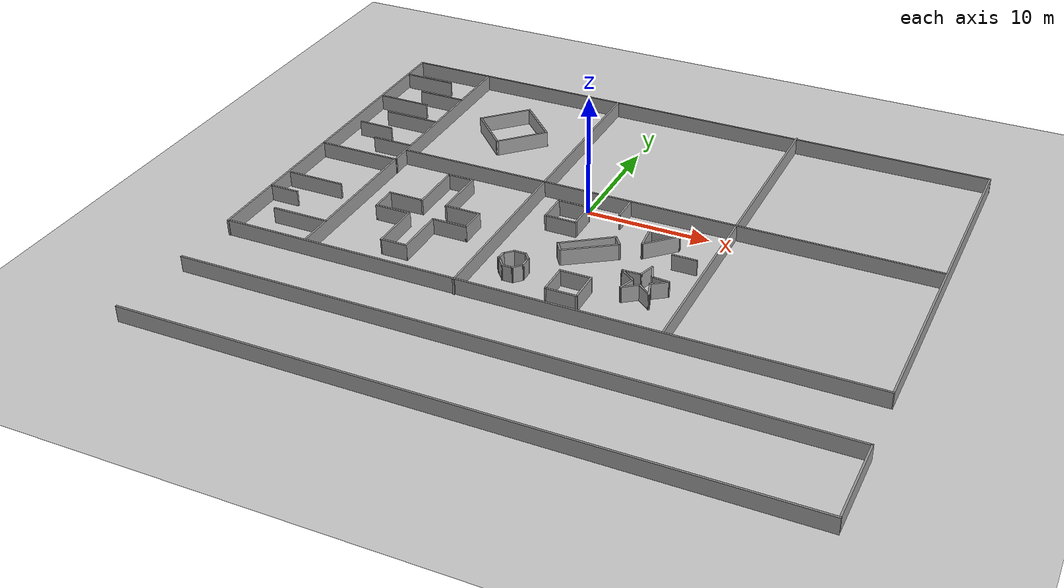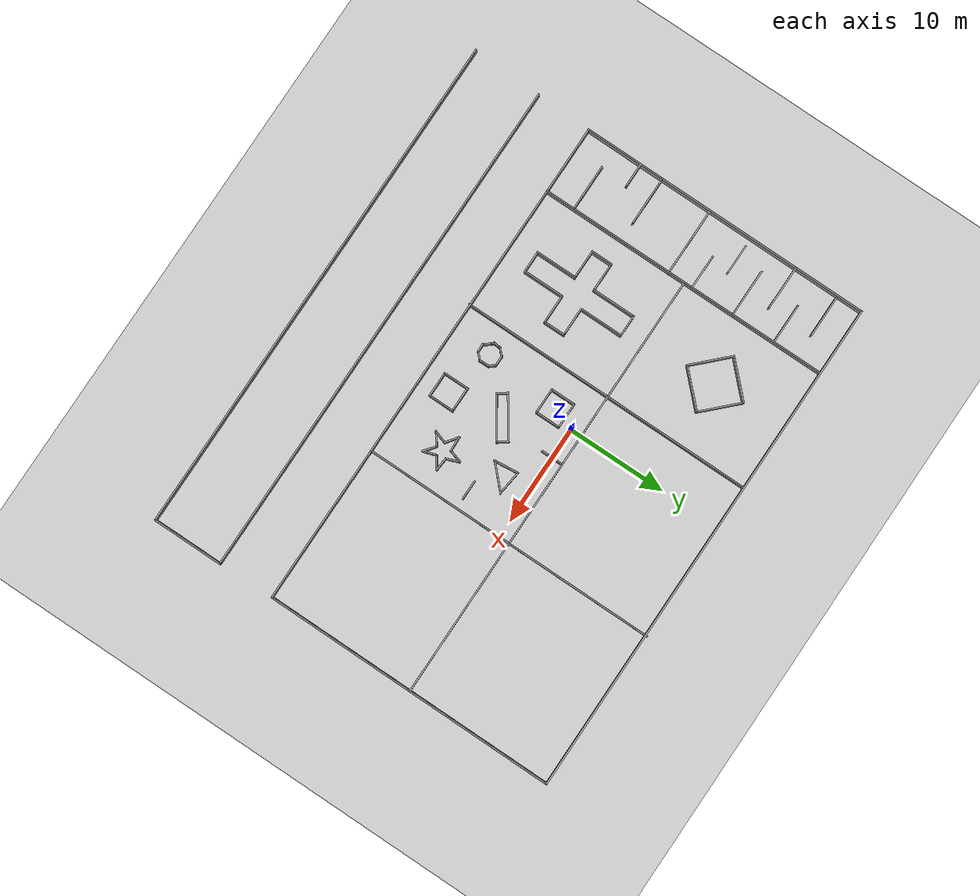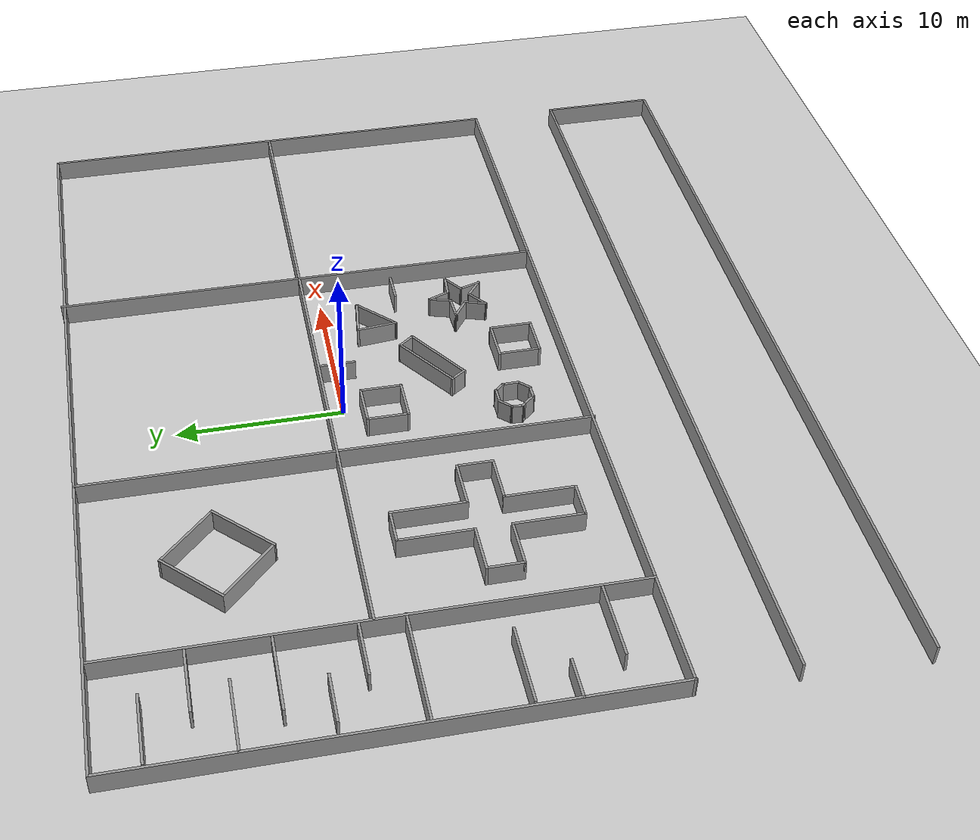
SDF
<sdf version="1.6">
 <world name="default">
  <include><uri>model://ground_plane</uri></include>
  <include><uri>model://sun</uri></include>
  <model name="total">
   <pose>1.86673 -5.34676 -1.25 0 -0 0</pose>
   <link name="Wall_100">
    <collision name="Wall_100_Collision">
     <geometry><box><size>52 0.15 2.5</size></box></geometry>
     <pose>0 0 1.25 0 -0 0</pose>
    </collision>
    <visual name="Wall_100_Visual">
     <pose>0 0 1.25 0 -0 0</pose>
     <geometry><box><size>52 0.15 2.5</size></box></geometry>
     <material>
      <script><uri>file://media/materials/scripts/gazebo.material</uri><name>Gazebo/Grey</name></script>
      <ambient>1 1 1 1</ambient>
     </material>
     <meta><layer>0</layer></meta>
    </visual>
    <pose>0.125 -14.3457 0 0 -0 0</pose>
   </link>
   <link name="Wall_101">
    <collision name="Wall_101_Collision">
     <geometry><box><size>7.25 0.15 2.5</size></box></geometry>
     <pose>0 0 1.25 0 -0 0</pose>
    </collision>
    <visual name="Wall_101_Visual">
     <pose>0 0 1.25 0 -0 0</pose>
     <geometry><box><size>7.25 0.15 2.5</size></box></geometry>
     <material>
      <script><uri>file://media/materials/scripts/gazebo.material</uri><name>Gazebo/Grey</name></script>
      <ambient>1 1 1 1</ambient>
     </material>
     <meta><layer>0</layer></meta>
    </visual>
    <pose>26.05 -17.8957 0 0 -0 -1.5708</pose>
   </link>
   <link name="Wall_102">
    <collision name="Wall_102_Collision">
     <geometry><box><size>52.25 0.15 2.5</size></box></geometry>
     <pose>0 0 1.25 0 -0 0</pose>
    </collision>
    <visual name="Wall_102_Visual">
     <pose>0 0 1.25 0 -0 0</pose>
     <geometry><box><size>52.25 0.15 2.5</size></box></geometry>
     <material>
      <script><uri>file://media/materials/scripts/gazebo.material</uri><name>Gazebo/Grey</name></script>
      <ambient>1 1 1 1</ambient>
     </material>
     <meta><layer>0</layer></meta>
    </visual>
    <pose>-0 -21.4457 0 0 -0 3.14159</pose>
   </link>
   <link name="Wall_104">
    <collision name="Wall_104_Collision">
     <geometry><box><size>30.2056 0.15 2.5</size></box></geometry>
     <pose>0 0 1.25 0 -0 0</pose>
    </collision>
    <visual name="Wall_104_Visual">
     <pose>0 0 1.25 0 -0 0</pose>
     <geometry><box><size>30.2056 0.15 2.5</size></box></geometry>
     <material>
      <script><uri>file://media/materials/scripts/gazebo.material</uri><name>Gazebo/Grey</name></script>
      <ambient>1 1 1 1</ambient>
     </material>
     <meta><layer>0</layer></meta>
    </visual>
    <pose>-25.6466 6.27018 0 0 -0 -1.57231</pose>
   </link>
   <link name="Wall_105">
    <collision name="Wall_105_Collision">
     <geometry><box><size>51.75 0.15 2.5</size></box></geometry>
     <pose>0 0 1.25 0 -0 0</pose>
    </collision>
    <visual name="Wall_105_Visual">
     <pose>0 0 1.25 0 -0 0</pose>
     <geometry><box><size>51.75 0.15 2.5</size></box></geometry>
     <material>
      <script><uri>file://media/materials/scripts/gazebo.material</uri><name>Gazebo/Grey</name></script>
      <ambient>1 1 1 1</ambient>
     </material>
     <meta><layer>0</layer></meta>
    </visual>
    <pose>0.130611 -8.71213 0 0 -0 0</pose>
   </link>
   <link name="Wall_106">
    <collision name="Wall_106_Collision">
     <geometry><box><size>30.1591 0.15 2.5</size></box></geometry>
     <pose>0 0 1.25 0 -0 0</pose>
    </collision>
    <visual name="Wall_106_Visual">
     <pose>0 0 1.25 0 -0 0</pose>
     <geometry><box><size>30.1591 0.15 2.5</size></box></geometry>
     <material>
      <script><uri>file://media/materials/scripts/gazebo.material</uri><name>Gazebo/Grey</name></script>
      <ambient>1 1 1 1</ambient>
     </material>
     <meta><layer>0</layer></meta>
    </visual>
    <pose>25.9566 6.29242 0 0 -0 1.56907</pose>
   </link>
   <link name="Wall_107">
    <collision name="Wall_107_Collision">
     <geometry><box><size>51.7506 0.15 2.5</size></box></geometry>
     <pose>0 0 1.25 0 -0 0</pose>
    </collision>
    <visual name="Wall_107_Visual">
     <pose>0 0 1.25 0 -0 0</pose>
     <geometry><box><size>51.7506 0.15 2.5</size></box></geometry>
     <material>
      <script><uri>file://media/materials/scripts/gazebo.material</uri><name>Gazebo/Grey</name></script>
      <ambient>1 1 1 1</ambient>
     </material>
     <meta><layer>0</layer></meta>
    </visual>
    <pose>0.182505 21.297 0 0 -0 3.14159</pose>
   </link>
   <link name="Wall_109">
    <collision name="Wall_109_Collision">
     <geometry><box><size>30 0.15 2.5</size></box></geometry>
     <pose>0 0 1.25 0 -0 0</pose>
    </collision>
    <visual name="Wall_109_Visual">
     <pose>0 0 1.25 0 -0 0</pose>
     <geometry><box><size>30 0.15 2.5</size></box></geometry>
     <material>
      <script><uri>file://media/materials/scripts/gazebo.material</uri><name>Gazebo/Grey</name></script>
      <ambient>1 1 1 1</ambient>
     </material>
     <meta><layer>0</layer></meta>
    </visual>
    <pose>-18.8276 6.23117 0 0 -0 -1.5708</pose>
   </link>
   <link name="Wall_111">
    <collision name="Wall_111_Collision">
     <geometry><box><size>4.25 0.15 2.5</size></box></geometry>
     <pose>0 0 1.25 0 -0 0</pose>
    </collision>
    <visual name="Wall_111_Visual">
     <pose>0 0 1.25 0 -0 0</pose>
     <geometry><box><size>4.25 0.15 2.5</size></box></geometry>
     <material>
      <script><uri>file://media/materials/scripts/gazebo.material</uri><name>Gazebo/Grey</name></script>
      <ambient>1 1 1 1</ambient>
     </material>
     <meta><layer>0</layer></meta>
    </visual>
    <pose>-23.3719 18.7001 0 0 -0 0</pose>
   </link>
   <link name="Wall_113">
    <collision name="Wall_113_Collision">
     <geometry><box><size>4 0.15 2.5</size></box></geometry>
     <pose>0 0 1.25 0 -0 0</pose>
    </collision>
    <visual name="Wall_113_Visual">
     <pose>0 0 1.25 0 -0 0</pose>
     <geometry><box><size>4 0.15 2.5</size></box></geometry>
     <material>
      <script><uri>file://media/materials/scripts/gazebo.material</uri><name>Gazebo/Grey</name></script>
      <ambient>1 1 1 1</ambient>
     </material>
     <meta><layer>0</layer></meta>
    </visual>
    <pose>-20.8595 16.1986 0 0 -0 0</pose>
   </link>
   <link name="Wall_115">
    <collision name="Wall_115_Collision">
     <geometry><box><size>4.5 0.15 2.5</size></box></geometry>
     <pose>0 0 1.25 0 -0 0</pose>
    </collision>
    <visual name="Wall_115_Visual">
     <pose>0 0 1.25 0 -0 0</pose>
     <geometry><box><size>4.5 0.15 2.5</size></box></geometry>
     <material>
      <script><uri>file://media/materials/scripts/gazebo.material</uri><name>Gazebo/Grey</name></script>
      <ambient>1 1 1 1</ambient>
     </material>
     <meta><layer>0</layer></meta>
    </visual>
    <pose>-23.4294 14.1065 0 0 -0 0</pose>
   </link>
   <link name="Wall_117">
    <collision name="Wall_117_Collision">
     <geometry><box><size>4.75 0.15 2.5</size></box></geometry>
     <pose>0 0 1.25 0 -0 0</pose>
    </collision>
    <visual name="Wall_117_Visual">
     <pose>0 0 1.25 0 -0 0</pose>
     <geometry><box><size>4.75 0.15 2.5</size></box></geometry>
     <material>
      <script><uri>file://media/materials/scripts/gazebo.material</uri><name>Gazebo/Grey</name></script>
      <ambient>1 1 1 1</ambient>
     </material>
     <meta><layer>0</layer></meta>
    </visual>
    <pose>-21.2577 11.6959 0 0 -0 0</pose>
   </link>
   <link name="Wall_119">
    <collision name="Wall_119_Collision">
     <geometry><box><size>3 0.15 2.5</size></box></geometry>
     <pose>0 0 1.25 0 -0 0</pose>
    </collision>
    <visual name="Wall_119_Visual">
     <pose>0 0 1.25 0 -0 0</pose>
     <geometry><box><size>3 0.15 2.5</size></box></geometry>
     <material>
      <script><uri>file://media/materials/scripts/gazebo.material</uri><name>Gazebo/Grey</name></script>
      <ambient>1 1 1 1</ambient>
     </material>
     <meta><layer>0</layer></meta>
    </visual>
    <pose>-23.3152 9.19441 0 0 -0 0</pose>
   </link>
   <link name="Wall_121">
    <collision name="Wall_121_Collision">
     <geometry><box><size>3.5 0.15 2.5</size></box></geometry>
     <pose>0 0 1.25 0 -0 0</pose>
    </collision>
    <visual name="Wall_121_Visual">
     <pose>0 0 1.25 0 -0 0</pose>
     <geometry><box><size>3.5 0.15 2.5</size></box></geometry>
     <material>
      <script><uri>file://media/materials/scripts/gazebo.material</uri><name>Gazebo/Grey</name></script>
      <ambient>1 1 1 1</ambient>
     </material>
     <meta><layer>0</layer></meta>
    </visual>
    <pose>-20.5429 7.21902 0 0 -0 0</pose>
   </link>
   <link name="Wall_123">
    <collision name="Wall_123_Collision">
     <geometry><box><size>7 0.15 2.5</size></box></geometry>
     <pose>0 0 1.25 0 -0 0</pose>
    </collision>
    <visual name="Wall_123_Visual">
     <pose>0 0 1.25 0 -0 0</pose>
     <geometry><box><size>7 0.15 2.5</size></box></geometry>
     <material>
      <script><uri>file://media/materials/scripts/gazebo.material</uri><name>Gazebo/Grey</name></script>
      <ambient>1 1 1 1</ambient>
     </material>
     <meta><layer>0</layer></meta>
    </visual>
    <pose>-22.2144 4.68601 0 0 -0 0</pose>
   </link>
   <link name="Wall_127">
    <collision name="Wall_127_Collision">
     <geometry><box><size>4.75 0.15 2.5</size></box></geometry>
     <pose>0 0 1.25 0 -0 0</pose>
    </collision>
    <visual name="Wall_127_Visual">
     <pose>0 0 1.25 0 -0 0</pose>
     <geometry><box><size>4.75 0.15 2.5</size></box></geometry>
     <material>
      <script><uri>file://media/materials/scripts/gazebo.material</uri><name>Gazebo/Grey</name></script>
      <ambient>1 1 1 1</ambient>
     </material>
     <meta><layer>0</layer></meta>
    </visual>
    <pose>-23.081 -0.564043 0 0 -0 0</pose>
   </link>
   <link name="Wall_129">
    <collision name="Wall_129_Collision">
     <geometry><box><size>2.5 0.15 2.5</size></box></geometry>
     <pose>0 0 1.25 0 -0 0</pose>
    </collision>
    <visual name="Wall_129_Visual">
     <pose>0 0 1.25 0 -0 0</pose>
     <geometry><box><size>2.5 0.15 2.5</size></box></geometry>
     <material>
      <script><uri>file://media/materials/scripts/gazebo.material</uri><name>Gazebo/Grey</name></script>
      <ambient>1 1 1 1</ambient>
     </material>
     <meta><layer>0</layer></meta>
    </visual>
    <pose>-24.4841 -2.96294 0 0 -0 0</pose>
   </link>
   <link name="Wall_131">
    <collision name="Wall_131_Collision">
     <geometry><box><size>4.75 0.15 2.5</size></box></geometry>
     <pose>0 0 1.25 0 -0 0</pose>
    </collision>
    <visual name="Wall_131_Visual">
     <pose>0 0 1.25 0 -0 0</pose>
     <geometry><box><size>4.75 0.15 2.5</size></box></geometry>
     <material>
      <script><uri>file://media/materials/scripts/gazebo.material</uri><name>Gazebo/Grey</name></script>
      <ambient>1 1 1 1</ambient>
     </material>
     <meta><layer>0</layer></meta>
    </visual>
    <pose>-21.1338 -5.78082 0 0 -0 0</pose>
   </link>
   <link name="Wall_133">
    <collision name="Wall_133_Collision">
     <geometry><box><size>44.75 0.15 2.5</size></box></geometry>
     <pose>0 0 1.25 0 -0 0</pose>
    </collision>
    <visual name="Wall_133_Visual">
     <pose>0 0 1.25 0 -0 0</pose>
     <geometry><box><size>44.75 0.15 2.5</size></box></geometry>
     <material>
      <script><uri>file://media/materials/scripts/gazebo.material</uri><name>Gazebo/Grey</name></script>
      <ambient>1 1 1 1</ambient>
     </material>
     <meta><layer>0</layer></meta>
    </visual>
    <pose>3.54983 6.3987 0 0 -0 0</pose>
   </link>
   <link name="Wall_135">
    <collision name="Wall_135_Collision">
     <geometry><box><size>30.25 0.15 2.5</size></box></geometry>
     <pose>0 0 1.25 0 -0 0</pose>
    </collision>
    <visual name="Wall_135_Visual">
     <pose>0 0 1.25 0 -0 0</pose>
     <geometry><box><size>30.25 0.15 2.5</size></box></geometry>
     <material>
      <script><uri>file://media/materials/scripts/gazebo.material</uri><name>Gazebo/Grey</name></script>
      <ambient>1 1 1 1</ambient>
     </material>
     <meta><layer>0</layer></meta>
    </visual>
    <pose>-6.20205 6.24141 0 0 -0 -1.5708</pose>
   </link>
   <link name="Wall_138">
    <collision name="Wall_138_Collision">
     <geometry><box><size>30.25 0.15 2.5</size></box></geometry>
     <pose>0 0 1.25 0 -0 0</pose>
    </collision>
    <visual name="Wall_138_Visual">
     <pose>0 0 1.25 0 -0 0</pose>
     <geometry><box><size>30.25 0.15 2.5</size></box></geometry>
     <material>
      <script><uri>file://media/materials/scripts/gazebo.material</uri><name>Gazebo/Grey</name></script>
      <ambient>1 1 1 1</ambient>
     </material>
     <meta><layer>0</layer></meta>
    </visual>
    <pose>9.89343 6.39568 0 0 -0 -1.5708</pose>
   </link>
   <link name="Wall_140">
    <collision name="Wall_140_Collision">
     <geometry><box><size>4.5 0.15 2.5</size></box></geometry>
     <pose>0 0 1.25 0 -0 0</pose>
    </collision>
    <visual name="Wall_140_Visual">
     <pose>0 0 1.25 0 -0 0</pose>
     <geometry><box><size>4.5 0.15 2.5</size></box></geometry>
     <material>
      <script><uri>file://media/materials/scripts/gazebo.material</uri><name>Gazebo/Grey</name></script>
      <ambient>1 1 1 1</ambient>
     </material>
     <meta><layer>0</layer></meta>
    </visual>
    <pose>-14.1943 15.4162 0 0 -0 0.785398</pose>
   </link>
   <link name="Wall_141">
    <collision name="Wall_141_Collision">
     <geometry><box><size>4.5 0.15 2.5</size></box></geometry>
     <pose>0 0 1.25 0 -0 0</pose>
    </collision>
    <visual name="Wall_141_Visual">
     <pose>0 0 1.25 0 -0 0</pose>
     <geometry><box><size>4.5 0.15 2.5</size></box></geometry>
     <material>
      <script><uri>file://media/materials/scripts/gazebo.material</uri><name>Gazebo/Grey</name></script>
      <ambient>1 1 1 1</ambient>
     </material>
     <meta><layer>0</layer></meta>
    </visual>
    <pose>-11.1184 15.4162 0 0 -0 -0.785398</pose>
   </link>
   <link name="Wall_142">
    <collision name="Wall_142_Collision">
     <geometry><box><size>4.5 0.15 2.5</size></box></geometry>
     <pose>0 0 1.25 0 -0 0</pose>
    </collision>
    <visual name="Wall_142_Visual">
     <pose>0 0 1.25 0 -0 0</pose>
     <geometry><box><size>4.5 0.15 2.5</size></box></geometry>
     <material>
      <script><uri>file://media/materials/scripts/gazebo.material</uri><name>Gazebo/Grey</name></script>
      <ambient>1 1 1 1</ambient>
     </material>
     <meta><layer>0</layer></meta>
    </visual>
    <pose>-11.1184 12.3402 0 0 -0 -2.35619</pose>
   </link>
   <link name="Wall_143">
    <collision name="Wall_143_Collision">
     <geometry><box><size>4.5 0.15 2.5</size></box></geometry>
     <pose>0 0 1.25 0 -0 0</pose>
    </collision>
    <visual name="Wall_143_Visual">
     <pose>0 0 1.25 0 -0 0</pose>
     <geometry><box><size>4.5 0.15 2.5</size></box></geometry>
     <material>
      <script><uri>file://media/materials/scripts/gazebo.material</uri><name>Gazebo/Grey</name></script>
      <ambient>1 1 1 1</ambient>
     </material>
     <meta><layer>0</layer></meta>
    </visual>
    <pose>-14.1943 12.3402 0 0 -0 2.35619</pose>
   </link>
   <link name="Wall_145">
    <collision name="Wall_145_Collision">
     <geometry><box><size>4.5 0.15 2.5</size></box></geometry>
     <pose>0 0 1.25 0 -0 0</pose>
    </collision>
    <visual name="Wall_145_Visual">
     <pose>0 0 1.25 0 -0 0</pose>
     <geometry><box><size>4.5 0.15 2.5</size></box></geometry>
     <material>
      <script><uri>file://media/materials/scripts/gazebo.material</uri><name>Gazebo/Grey</name></script>
      <ambient>1 1 1 1</ambient>
     </material>
     <meta><layer>0</layer></meta>
    </visual>
    <pose>-13.6429 2.09425 0 0 -0 1.5708</pose>
   </link>
   <link name="Wall_146">
    <collision name="Wall_146_Collision">
     <geometry><box><size>2.25 0.15 2.5</size></box></geometry>
     <pose>0 0 1.25 0 -0 0</pose>
    </collision>
    <visual name="Wall_146_Visual">
     <pose>0 0 1.25 0 -0 0</pose>
     <geometry><box><size>2.25 0.15 2.5</size></box></geometry>
     <material>
      <script><uri>file://media/materials/scripts/gazebo.material</uri><name>Gazebo/Grey</name></script>
      <ambient>1 1 1 1</ambient>
     </material>
     <meta><layer>0</layer></meta>
    </visual>
    <pose>-12.5929 4.26925 0 0 -0 0</pose>
   </link>
   <link name="Wall_147">
    <collision name="Wall_147_Collision">
     <geometry><box><size>4.5 0.15 2.5</size></box></geometry>
     <pose>0 0 1.25 0 -0 0</pose>
    </collision>
    <visual name="Wall_147_Visual">
     <pose>0 0 1.25 0 -0 0</pose>
     <geometry><box><size>4.5 0.15 2.5</size></box></geometry>
     <material>
      <script><uri>file://media/materials/scripts/gazebo.material</uri><name>Gazebo/Grey</name></script>
      <ambient>1 1 1 1</ambient>
     </material>
     <meta><layer>0</layer></meta>
    </visual>
    <pose>-11.5429 2.09425 0 0 -0 -1.5708</pose>
   </link>
   <link name="Wall_149">
    <collision name="Wall_149_Collision">
     <geometry><box><size>3 0.15 2.5</size></box></geometry>
     <pose>0 0 1.25 0 -0 0</pose>
    </collision>
    <visual name="Wall_149_Visual">
     <pose>0 0 1.25 0 -0 0</pose>
     <geometry><box><size>3 0.15 2.5</size></box></geometry>
     <material>
      <script><uri>file://media/materials/scripts/gazebo.material</uri><name>Gazebo/Grey</name></script>
      <ambient>1 1 1 1</ambient>
     </material>
     <meta><layer>0</layer></meta>
    </visual>
    <pose>-15.0679 -0.080748 0 0 -0 3.14159</pose>
   </link>
   <link name="Wall_150">
    <collision name="Wall_150_Collision">
     <geometry><box><size>2.25 0.15 2.5</size></box></geometry>
     <pose>0 0 1.25 0 -0 0</pose>
    </collision>
    <visual name="Wall_150_Visual">
     <pose>0 0 1.25 0 -0 0</pose>
     <geometry><box><size>2.25 0.15 2.5</size></box></geometry>
     <material>
      <script><uri>file://media/materials/scripts/gazebo.material</uri><name>Gazebo/Grey</name></script>
      <ambient>1 1 1 1</ambient>
     </material>
     <meta><layer>0</layer></meta>
    </visual>
    <pose>-16.4929 -1.13075 0 0 -0 -1.5708</pose>
   </link>
   <link name="Wall_151">
    <collision name="Wall_151_Collision">
     <geometry><box><size>3 0.15 2.5</size></box></geometry>
     <pose>0 0 1.25 0 -0 0</pose>
    </collision>
    <visual name="Wall_151_Visual">
     <pose>0 0 1.25 0 -0 0</pose>
     <geometry><box><size>3 0.15 2.5</size></box></geometry>
     <material>
      <script><uri>file://media/materials/scripts/gazebo.material</uri><name>Gazebo/Grey</name></script>
      <ambient>1 1 1 1</ambient>
     </material>
     <meta><layer>0</layer></meta>
    </visual>
    <pose>-15.0679 -2.18075 0 0 -0 0</pose>
   </link>
   <link name="Wall_154">
    <collision name="Wall_154_Collision">
     <geometry><box><size>4.25 0.15 2.5</size></box></geometry>
     <pose>0 0 1.25 0 -0 0</pose>
    </collision>
    <visual name="Wall_154_Visual">
     <pose>0 0 1.25 0 -0 0</pose>
     <geometry><box><size>4.25 0.15 2.5</size></box></geometry>
     <material>
      <script><uri>file://media/materials/scripts/gazebo.material</uri><name>Gazebo/Grey</name></script>
      <ambient>1 1 1 1</ambient>
     </material>
     <meta><layer>0</layer></meta>
    </visual>
    <pose>-13.6429 -4.23075 0 0 -0 -1.5708</pose>
   </link>
   <link name="Wall_155">
    <collision name="Wall_155_Collision">
     <geometry><box><size>2.25 0.15 2.5</size></box></geometry>
     <pose>0 0 1.25 0 -0 0</pose>
    </collision>
    <visual name="Wall_155_Visual">
     <pose>0 0 1.25 0 -0 0</pose>
     <geometry><box><size>2.25 0.15 2.5</size></box></geometry>
     <material>
      <script><uri>file://media/materials/scripts/gazebo.material</uri><name>Gazebo/Grey</name></script>
      <ambient>1 1 1 1</ambient>
     </material>
     <meta><layer>0</layer></meta>
    </visual>
    <pose>-12.5929 -6.28075 0 0 -0 0</pose>
   </link>
   <link name="Wall_156">
    <collision name="Wall_156_Collision">
     <geometry><box><size>4.25 0.15 2.5</size></box></geometry>
     <pose>0 0 1.25 0 -0 0</pose>
    </collision>
    <visual name="Wall_156_Visual">
     <pose>0 0 1.25 0 -0 0</pose>
     <geometry><box><size>4.25 0.15 2.5</size></box></geometry>
     <material>
      <script><uri>file://media/materials/scripts/gazebo.material</uri><name>Gazebo/Grey</name></script>
      <ambient>1 1 1 1</ambient>
     </material>
     <meta><layer>0</layer></meta>
    </visual>
    <pose>-11.5429 -4.23075 0 0 -0 1.5708</pose>
   </link>
   <link name="Wall_157">
    <collision name="Wall_157_Collision">
     <geometry><box><size>3 0.15 2.5</size></box></geometry>
     <pose>0 0 1.25 0 -0 0</pose>
    </collision>
    <visual name="Wall_157_Visual">
     <pose>0 0 1.25 0 -0 0</pose>
     <geometry><box><size>3 0.15 2.5</size></box></geometry>
     <material>
      <script><uri>file://media/materials/scripts/gazebo.material</uri><name>Gazebo/Grey</name></script>
      <ambient>1 1 1 1</ambient>
     </material>
     <meta><layer>0</layer></meta>
    </visual>
    <pose>-10.1179 -2.18075 0 0 -0 0</pose>
   </link>
   <link name="Wall_158">
    <collision name="Wall_158_Collision">
     <geometry><box><size>2.25 0.15 2.5</size></box></geometry>
     <pose>0 0 1.25 0 -0 0</pose>
    </collision>
    <visual name="Wall_158_Visual">
     <pose>0 0 1.25 0 -0 0</pose>
     <geometry><box><size>2.25 0.15 2.5</size></box></geometry>
     <material>
      <script><uri>file://media/materials/scripts/gazebo.material</uri><name>Gazebo/Grey</name></script>
      <ambient>1 1 1 1</ambient>
     </material>
     <meta><layer>0</layer></meta>
    </visual>
    <pose>-8.69286 -1.13075 0 0 -0 1.5708</pose>
   </link>
   <link name="Wall_159">
    <collision name="Wall_159_Collision">
     <geometry><box><size>3 0.15 2.5</size></box></geometry>
     <pose>0 0 1.25 0 -0 0</pose>
    </collision>
    <visual name="Wall_159_Visual">
     <pose>0 0 1.25 0 -0 0</pose>
     <geometry><box><size>3 0.15 2.5</size></box></geometry>
     <material>
      <script><uri>file://media/materials/scripts/gazebo.material</uri><name>Gazebo/Grey</name></script>
      <ambient>1 1 1 1</ambient>
     </material>
     <meta><layer>0</layer></meta>
    </visual>
    <pose>-10.1179 -0.080748 0 0 -0 3.14159</pose>
   </link>
   <link name="Wall_163">
    <collision name="Wall_163_Collision">
     <geometry><box><size>2.66635 0.15 2.5</size></box></geometry>
     <pose>0 0 1.25 0 -0 0</pose>
    </collision>
    <visual name="Wall_163_Visual">
     <pose>0 0 1.25 0 -0 0</pose>
     <geometry><box><size>2.66635 0.15 2.5</size></box></geometry>
     <material>
      <script><uri>file://media/materials/scripts/gazebo.material</uri><name>Gazebo/Grey</name></script>
      <ambient>1 1 1 1</ambient>
     </material>
     <meta><layer>0</layer></meta>
    </visual>
    <pose>-2.66294 4.24634 0 0 -0 0</pose>
   </link>
   <link name="Wall_164">
    <collision name="Wall_164_Collision">
     <geometry><box><size>2.59178 0.15 2.5</size></box></geometry>
     <pose>0 0 1.25 0 -0 0</pose>
    </collision>
    <visual name="Wall_164_Visual">
     <pose>0 0 1.25 0 -0 0</pose>
     <geometry><box><size>2.59178 0.15 2.5</size></box></geometry>
     <material>
      <script><uri>file://media/materials/scripts/gazebo.material</uri><name>Gazebo/Grey</name></script>
      <ambient>1 1 1 1</ambient>
     </material>
     <meta><layer>0</layer></meta>
    </visual>
    <pose>-1.40477 3.02545 0 0 -0 -1.5708</pose>
   </link>
   <link name="Wall_165">
    <collision name="Wall_165_Collision">
     <geometry><box><size>2.66634 0.15 2.5</size></box></geometry>
     <pose>0 0 1.25 0 -0 0</pose>
    </collision>
    <visual name="Wall_165_Visual">
     <pose>0 0 1.25 0 -0 0</pose>
     <geometry><box><size>2.66634 0.15 2.5</size></box></geometry>
     <material>
      <script><uri>file://media/materials/scripts/gazebo.material</uri><name>Gazebo/Grey</name></script>
      <ambient>1 1 1 1</ambient>
     </material>
     <meta><layer>0</layer></meta>
    </visual>
    <pose>-2.66294 1.80456 0 0 -0 3.14159</pose>
   </link>
   <link name="Wall_166">
    <collision name="Wall_166_Collision">
     <geometry><box><size>2.59178 0.15 2.5</size></box></geometry>
     <pose>0 0 1.25 0 -0 0</pose>
    </collision>
    <visual name="Wall_166_Visual">
     <pose>0 0 1.25 0 -0 0</pose>
     <geometry><box><size>2.59178 0.15 2.5</size></box></geometry>
     <material>
      <script><uri>file://media/materials/scripts/gazebo.material</uri><name>Gazebo/Grey</name></script>
      <ambient>1 1 1 1</ambient>
     </material>
     <meta><layer>0</layer></meta>
    </visual>
    <pose>-3.92111 3.02545 0 0 -0 1.5708</pose>
   </link>
   <link name="Wall_168">
    <collision name="Wall_168_Collision">
     <geometry><box><size>2.61401 0.15 2.5</size></box></geometry>
     <pose>0 0 1.25 0 -0 0</pose>
    </collision>
    <visual name="Wall_168_Visual">
     <pose>0 0 1.25 0 -0 0</pose>
     <geometry><box><size>2.61401 0.15 2.5</size></box></geometry>
     <material>
      <script><uri>file://media/materials/scripts/gazebo.material</uri><name>Gazebo/Grey</name></script>
      <ambient>1 1 1 1</ambient>
     </material>
     <meta><layer>0</layer></meta>
    </visual>
    <pose>1.50755 -4.62074 0 0 -0 0</pose>
   </link>
   <link name="Wall_169">
    <collision name="Wall_169_Collision">
     <geometry><box><size>2.6544 0.15 2.5</size></box></geometry>
     <pose>0 0 1.25 0 -0 0</pose>
    </collision>
    <visual name="Wall_169_Visual">
     <pose>0 0 1.25 0 -0 0</pose>
     <geometry><box><size>2.6544 0.15 2.5</size></box></geometry>
     <material>
      <script><uri>file://media/materials/scripts/gazebo.material</uri><name>Gazebo/Grey</name></script>
      <ambient>1 1 1 1</ambient>
     </material>
     <meta><layer>0</layer></meta>
    </visual>
    <pose>2.73953 -5.87291 0 0 -0 -1.5708</pose>
   </link>
   <link name="Wall_170">
    <collision name="Wall_170_Collision">
     <geometry><box><size>2.5978 0.15 2.5</size></box></geometry>
     <pose>0 0 1.25 0 -0 0</pose>
    </collision>
    <visual name="Wall_170_Visual">
     <pose>0 0 1.25 0 -0 0</pose>
     <geometry><box><size>2.5978 0.15 2.5</size></box></geometry>
     <material>
      <script><uri>file://media/materials/scripts/gazebo.material</uri><name>Gazebo/Grey</name></script>
      <ambient>1 1 1 1</ambient>
     </material>
     <meta><layer>0</layer></meta>
    </visual>
    <pose>1.51563 -7.12508 0 0 -0 3.14159</pose>
   </link>
   <link name="Wall_171">
    <collision name="Wall_171_Collision">
     <geometry><box><size>2.63011 0.15 2.5</size></box></geometry>
     <pose>0 0 1.25 0 -0 0</pose>
    </collision>
    <visual name="Wall_171_Visual">
     <pose>0 0 1.25 0 -0 0</pose>
     <geometry><box><size>2.63011 0.15 2.5</size></box></geometry>
     <material>
      <script><uri>file://media/materials/scripts/gazebo.material</uri><name>Gazebo/Grey</name></script>
      <ambient>1 1 1 1</ambient>
     </material>
     <meta><layer>0</layer></meta>
    </visual>
    <pose>0.291736 -5.88503 0 0 -0 1.5708</pose>
   </link>
   <link name="Wall_174">
    <collision name="Wall_174_Collision">
     <geometry><box><size>1.4021 0.15 2.5</size></box></geometry>
     <pose>0 0 1.25 0 -0 0</pose>
    </collision>
    <visual name="Wall_174_Visual">
     <pose>0 0 1.25 0 -0 0</pose>
     <geometry><box><size>1.4021 0.15 2.5</size></box></geometry>
     <material>
      <script><uri>file://media/materials/scripts/gazebo.material</uri><name>Gazebo/Grey</name></script>
      <ambient>1 1 1 1</ambient>
     </material>
     <meta><layer>0</layer></meta>
    </visual>
    <pose>6.02153 -2.10494 0 0 -0 -1.859</pose>
   </link>
   <link name="Wall_175">
    <collision name="Wall_175_Collision">
     <geometry><box><size>1.59598 0.15 2.5</size></box></geometry>
     <pose>0 0 1.25 0 -0 0</pose>
    </collision>
    <visual name="Wall_175_Visual">
     <pose>0 0 1.25 0 -0 0</pose>
     <geometry><box><size>1.59598 0.15 2.5</size></box></geometry>
     <material>
      <script><uri>file://media/materials/scripts/gazebo.material</uri><name>Gazebo/Grey</name></script>
      <ambient>1 1 1 1</ambient>
     </material>
     <meta><layer>0</layer></meta>
    </visual>
    <pose>5.12119 -2.73439 0 0 -0 -3.10117</pose>
   </link>
   <link name="Wall_176">
    <collision name="Wall_176_Collision">
     <geometry><box><size>1.57153 0.15 2.5</size></box></geometry>
     <pose>0 0 1.25 0 -0 0</pose>
    </collision>
    <visual name="Wall_176_Visual">
     <pose>0 0 1.25 0 -0 0</pose>
     <geometry><box><size>1.57153 0.15 2.5</size></box></geometry>
     <material>
      <script><uri>file://media/materials/scripts/gazebo.material</uri><name>Gazebo/Grey</name></script>
      <ambient>1 1 1 1</ambient>
     </material>
     <meta><layer>0</layer></meta>
    </visual>
    <pose>4.97246 -3.18323 0 0 -0 -0.631544</pose>
   </link>
   <link name="Wall_177">
    <collision name="Wall_177_Collision">
     <geometry><box><size>1.42492 0.15 2.5</size></box></geometry>
     <pose>0 0 1.25 0 -0 0</pose>
    </collision>
    <visual name="Wall_177_Visual">
     <pose>0 0 1.25 0 -0 0</pose>
     <geometry><box><size>1.42492 0.15 2.5</size></box></geometry>
     <material>
      <script><uri>file://media/materials/scripts/gazebo.material</uri><name>Gazebo/Grey</name></script>
      <ambient>1 1 1 1</ambient>
     </material>
     <meta><layer>0</layer></meta>
    </visual>
    <pose>5.34694 -4.2084 0 0 -0 -1.88859</pose>
   </link>
   <link name="Wall_178">
    <collision name="Wall_178_Collision">
     <geometry><box><size>1.52471 0.15 2.5</size></box></geometry>
     <pose>0 0 1.25 0 -0 0</pose>
    </collision>
    <visual name="Wall_178_Visual">
     <pose>0 0 1.25 0 -0 0</pose>
     <geometry><box><size>1.52471 0.15 2.5</size></box></geometry>
     <material>
      <script><uri>file://media/materials/scripts/gazebo.material</uri><name>Gazebo/Grey</name></script>
      <ambient>1 1 1 1</ambient>
     </material>
     <meta><layer>0</layer></meta>
    </visual>
    <pose>5.70017 -4.40494 0 0 -0 0.637319</pose>
   </link>
   <link name="Wall_179">
    <collision name="Wall_179_Collision">
     <geometry><box><size>1.48808 0.15 2.5</size></box></geometry>
     <pose>0 0 1.25 0 -0 0</pose>
    </collision>
    <visual name="Wall_179_Visual">
     <pose>0 0 1.25 0 -0 0</pose>
     <geometry><box><size>1.48808 0.15 2.5</size></box></geometry>
     <material>
      <script><uri>file://media/materials/scripts/gazebo.material</uri><name>Gazebo/Grey</name></script>
      <ambient>1 1 1 1</ambient>
     </material>
     <meta><layer>0</layer></meta>
    </visual>
    <pose>6.7758 -4.41291 0 0 -0 -0.672881</pose>
   </link>
   <link name="Wall_180">
    <collision name="Wall_180_Collision">
     <geometry><box><size>1.45524 0.15 2.5</size></box></geometry>
     <pose>0 0 1.25 0 -0 0</pose>
    </collision>
    <visual name="Wall_180_Visual">
     <pose>0 0 1.25 0 -0 0</pose>
     <geometry><box><size>1.45524 0.15 2.5</size></box></geometry>
     <material>
      <script><uri>file://media/materials/scripts/gazebo.material</uri><name>Gazebo/Grey</name></script>
      <ambient>1 1 1 1</ambient>
     </material>
     <meta><layer>0</layer></meta>
    </visual>
    <pose>7.09982 -4.2084 0 0 -0 1.88096</pose>
   </link>
   <link name="Wall_181">
    <collision name="Wall_181_Collision">
     <geometry><box><size>1.51032 0.15 2.5</size></box></geometry>
     <pose>0 0 1.25 0 -0 0</pose>
    </collision>
    <visual name="Wall_181_Visual">
     <pose>0 0 1.25 0 -0 0</pose>
     <geometry><box><size>1.51032 0.15 2.5</size></box></geometry>
     <material>
      <script><uri>file://media/materials/scripts/gazebo.material</uri><name>Gazebo/Grey</name></script>
      <ambient>1 1 1 1</ambient>
     </material>
     <meta><layer>0</layer></meta>
    </visual>
    <pose>7.45571 -3.19386 0 0 -0 0.616164</pose>
   </link>
   <link name="Wall_182">
    <collision name="Wall_182_Collision">
     <geometry><box><size>1.46101 0.15 2.5</size></box></geometry>
     <pose>0 0 1.25 0 -0 0</pose>
    </collision>
    <visual name="Wall_182_Visual">
     <pose>0 0 1.25 0 -0 0</pose>
     <geometry><box><size>1.46101 0.15 2.5</size></box></geometry>
     <material>
      <script><uri>file://media/materials/scripts/gazebo.material</uri><name>Gazebo/Grey</name></script>
      <ambient>1 1 1 1</ambient>
     </material>
     <meta><layer>0</layer></meta>
    </visual>
    <pose>7.35744 -2.74767 0 0 -0 3.06047</pose>
   </link>
   <link name="Wall_183">
    <collision name="Wall_183_Collision">
     <geometry><box><size>1.45503 0.15 2.5</size></box></geometry>
     <pose>0 0 1.25 0 -0 0</pose>
    </collision>
    <visual name="Wall_183_Visual">
     <pose>0 0 1.25 0 -0 0</pose>
     <geometry><box><size>1.45503 0.15 2.5</size></box></geometry>
     <material>
      <script><uri>file://media/materials/scripts/gazebo.material</uri><name>Gazebo/Grey</name></script>
      <ambient>1 1 1 1</ambient>
     </material>
     <meta><layer>0</layer></meta>
    </visual>
    <pose>6.46772 -2.08635 0 0 -0 1.94148</pose>
   </link>
   <link name="Wall_185">
    <collision name="Wall_185_Collision">
     <geometry><box><size>1.02314 0.15 2.5</size></box></geometry>
     <pose>0 0 1.25 0 -0 0</pose>
    </collision>
    <visual name="Wall_185_Visual">
     <pose>0 0 1.25 0 -0 0</pose>
     <geometry><box><size>1.02314 0.15 2.5</size></box></geometry>
     <material>
      <script><uri>file://media/materials/scripts/gazebo.material</uri><name>Gazebo/Grey</name></script>
      <ambient>1 1 1 1</ambient>
     </material>
     <meta><layer>0</layer></meta>
    </visual>
    <pose>-3.38549 -3.66288 0 0 -0 0</pose>
   </link>
   <link name="Wall_186">
    <collision name="Wall_186_Collision">
     <geometry><box><size>0.843256 0.15 2.5</size></box></geometry>
     <pose>0 0 1.25 0 -0 0</pose>
    </collision>
    <visual name="Wall_186_Visual">
     <pose>0 0 1.25 0 -0 0</pose>
     <geometry><box><size>0.843256 0.15 2.5</size></box></geometry>
     <material>
      <script><uri>file://media/materials/scripts/gazebo.material</uri><name>Gazebo/Grey</name></script>
      <ambient>1 1 1 1</ambient>
     </material>
     <meta><layer>0</layer></meta>
    </visual>
    <pose>-2.72191 -3.92483 0 0 -0 -0.856706</pose>
   </link>
   <link name="Wall_187">
    <collision name="Wall_187_Collision">
     <geometry><box><size>1.09316 0.15 2.5</size></box></geometry>
     <pose>0 0 1.25 0 -0 0</pose>
    </collision>
    <visual name="Wall_187_Visual">
     <pose>0 0 1.25 0 -0 0</pose>
     <geometry><box><size>1.09316 0.15 2.5</size></box></geometry>
     <material>
      <script><uri>file://media/materials/scripts/gazebo.material</uri><name>Gazebo/Grey</name></script>
      <ambient>1 1 1 1</ambient>
     </material>
     <meta><layer>0</layer></meta>
    </visual>
    <pose>-2.48616 -4.65827 0 0 -0 -1.55228</pose>
   </link>
   <link name="Wall_188">
    <collision name="Wall_188_Collision">
     <geometry><box><size>0.962689 0.15 2.5</size></box></geometry>
     <pose>0 0 1.25 0 -0 0</pose>
    </collision>
    <visual name="Wall_188_Visual">
     <pose>0 0 1.25 0 -0 0</pose>
     <geometry><box><size>0.962689 0.15 2.5</size></box></geometry>
     <material>
      <script><uri>file://media/materials/scripts/gazebo.material</uri><name>Gazebo/Grey</name></script>
      <ambient>1 1 1 1</ambient>
     </material>
     <meta><layer>0</layer></meta>
    </visual>
    <pose>-2.75858 -5.42314 0 0 -0 -2.33492</pose>
   </link>
   <link name="Wall_189">
    <collision name="Wall_189_Collision">
     <geometry><box><size>0.946314 0.15 2.5</size></box></geometry>
     <pose>0 0 1.25 0 -0 0</pose>
    </collision>
    <visual name="Wall_189_Visual">
     <pose>0 0 1.25 0 -0 0</pose>
     <geometry><box><size>0.946314 0.15 2.5</size></box></geometry>
     <material>
      <script><uri>file://media/materials/scripts/gazebo.material</uri><name>Gazebo/Grey</name></script>
      <ambient>1 1 1 1</ambient>
     </material>
     <meta><layer>0</layer></meta>
    </visual>
    <pose>-3.43788 -5.71826 0 0 -0 -3.13721</pose>
   </link>
   <link name="Wall_190">
    <collision name="Wall_190_Collision">
     <geometry><box><size>1.01447 0.15 2.5</size></box></geometry>
     <pose>0 0 1.25 0 -0 0</pose>
    </collision>
    <visual name="Wall_190_Visual">
     <pose>0 0 1.25 0 -0 0</pose>
     <geometry><box><size>1.01447 0.15 2.5</size></box></geometry>
     <material>
      <script><uri>file://media/materials/scripts/gazebo.material</uri><name>Gazebo/Grey</name></script>
      <ambient>1 1 1 1</ambient>
     </material>
     <meta><layer>0</layer></meta>
    </visual>
    <pose>-4.11719 -5.39171 0 0 -0 2.27898</pose>
   </link>
   <link name="Wall_191">
    <collision name="Wall_191_Collision">
     <geometry><box><size>0.330435 0.15 2.5</size></box></geometry>
     <pose>0 0 1.25 0 -0 0</pose>
    </collision>
    <visual name="Wall_191_Visual">
     <pose>0 0 1.25 0 -0 0</pose>
     <geometry><box><size>0.330435 0.15 2.5</size></box></geometry>
     <material>
      <script><uri>file://media/materials/scripts/gazebo.material</uri><name>Gazebo/Grey</name></script>
      <ambient>1 1 1 1</ambient>
     </material>
     <meta><layer>0</layer></meta>
    </visual>
    <pose>-4.4647 -5.00228 0 0 -0 2.39727</pose>
   </link>
   <link name="Wall_192">
    <collision name="Wall_192_Collision">
     <geometry><box><size>0.81624 0.15 2.5</size></box></geometry>
     <pose>0 0 1.25 0 -0 0</pose>
    </collision>
    <visual name="Wall_192_Visual">
     <pose>0 0 1.25 0 -0 0</pose>
     <geometry><box><size>0.81624 0.15 2.5</size></box></geometry>
     <material>
      <script><uri>file://media/materials/scripts/gazebo.material</uri><name>Gazebo/Grey</name></script>
      <ambient>1 1 1 1</ambient>
     </material>
     <meta><layer>0</layer></meta>
    </visual>
    <pose>-4.50137 -4.60937 0 0 -0 1.48156</pose>
   </link>
   <link name="Wall_193">
    <collision name="Wall_193_Collision">
     <geometry><box><size>0.989802 0.15 2.5</size></box></geometry>
     <pose>0 0 1.25 0 -0 0</pose>
    </collision>
    <visual name="Wall_193_Visual">
     <pose>0 0 1.25 0 -0 0</pose>
     <geometry><box><size>0.989802 0.15 2.5</size></box></geometry>
     <material>
      <script><uri>file://media/materials/scripts/gazebo.material</uri><name>Gazebo/Grey</name></script>
      <ambient>1 1 1 1</ambient>
     </material>
     <meta><layer>0</layer></meta>
    </visual>
    <pose>-4.18005 -3.97547 0 0 -0 0.803043</pose>
   </link>
   <link name="Wall_195">
    <collision name="Wall_195_Collision">
     <geometry><box><size>4.57035 0.15 2.5</size></box></geometry>
     <pose>0 0 1.25 0 -0 0</pose>
    </collision>
    <visual name="Wall_195_Visual">
     <pose>0 0 1.25 0 -0 0</pose>
     <geometry><box><size>4.57035 0.15 2.5</size></box></geometry>
     <material>
      <script><uri>file://media/materials/scripts/gazebo.material</uri><name>Gazebo/Grey</name></script>
      <ambient>1 1 1 1</ambient>
     </material>
     <meta><layer>0</layer></meta>
    </visual>
    <pose>0.391881 -0.091892 0 0 -0 0.608187</pose>
   </link>
   <link name="Wall_196">
    <collision name="Wall_196_Collision">
     <geometry><box><size>1.22834 0.15 2.5</size></box></geometry>
     <pose>0 0 1.25 0 -0 0</pose>
    </collision>
    <visual name="Wall_196_Visual">
     <pose>0 0 1.25 0 -0 0</pose>
     <geometry><box><size>1.22834 0.15 2.5</size></box></geometry>
     <material>
      <script><uri>file://media/materials/scripts/gazebo.material</uri><name>Gazebo/Grey</name></script>
      <ambient>1 1 1 1</ambient>
     </material>
     <meta><layer>0</layer></meta>
    </visual>
    <pose>2.53634 0.745044 0 0 -0 -0.910722</pose>
   </link>
   <link name="Wall_197">
    <collision name="Wall_197_Collision">
     <geometry><box><size>4.61572 0.15 2.5</size></box></geometry>
     <pose>0 0 1.25 0 -0 0</pose>
    </collision>
    <visual name="Wall_197_Visual">
     <pose>0 0 1.25 0 -0 0</pose>
     <geometry><box><size>4.61572 0.15 2.5</size></box></geometry>
     <material>
      <script><uri>file://media/materials/scripts/gazebo.material</uri><name>Gazebo/Grey</name></script>
      <ambient>1 1 1 1</ambient>
     </material>
     <meta><layer>0</layer></meta>
    </visual>
    <pose>1.01139 -0.922872 0 0 -0 -2.55174</pose>
   </link>
   <link name="Wall_198">
    <collision name="Wall_198_Collision">
     <geometry><box><size>1.1714 0.15 2.5</size></box></geometry>
     <pose>0 0 1.25 0 -0 0</pose>
    </collision>
    <visual name="Wall_198_Visual">
     <pose>0 0 1.25 0 -0 0</pose>
     <geometry><box><size>1.1714 0.15 2.5</size></box></geometry>
     <material>
      <script><uri>file://media/materials/scripts/gazebo.material</uri><name>Gazebo/Grey</name></script>
      <ambient>1 1 1 1</ambient>
     </material>
     <meta><layer>0</layer></meta>
    </visual>
    <pose>-1.13903 -1.74789 0 0 -0 2.1863</pose>
   </link>
   <link name="Wall_200">
    <collision name="Wall_200_Collision">
     <geometry><box><size>2.47943 0.15 2.5</size></box></geometry>
     <pose>0 0 1.25 0 -0 0</pose>
    </collision>
    <visual name="Wall_200_Visual">
     <pose>0 0 1.25 0 -0 0</pose>
     <geometry><box><size>2.47943 0.15 2.5</size></box></geometry>
     <material>
      <script><uri>file://media/materials/scripts/gazebo.material</uri><name>Gazebo/Grey</name></script>
      <ambient>1 1 1 1</ambient>
     </material>
     <meta><layer>0</layer></meta>
    </visual>
    <pose>4.24894 2.26404 0 0 -0 -1.46833</pose>
   </link>
   <link name="Wall_201">
    <collision name="Wall_201_Collision">
     <geometry><box><size>3.14518 0.15 2.5</size></box></geometry>
     <pose>0 0 1.25 0 -0 0</pose>
    </collision>
    <visual name="Wall_201_Visual">
     <pose>0 0 1.25 0 -0 0</pose>
     <geometry><box><size>3.14518 0.15 2.5</size></box></geometry>
     <material>
      <script><uri>file://media/materials/scripts/gazebo.material</uri><name>Gazebo/Grey</name></script>
      <ambient>1 1 1 1</ambient>
     </material>
     <meta><layer>0</layer></meta>
    </visual>
    <pose>5.44328 2.14788 0 0 -0 0.769928</pose>
   </link>
   <link name="Wall_202">
    <collision name="Wall_202_Collision">
     <geometry><box><size>2.56975 0.15 2.5</size></box></geometry>
     <pose>0 0 1.25 0 -0 0</pose>
    </collision>
    <visual name="Wall_202_Visual">
     <pose>0 0 1.25 0 -0 0</pose>
     <geometry><box><size>2.56975 0.15 2.5</size></box></geometry>
     <material>
      <script><uri>file://media/materials/scripts/gazebo.material</uri><name>Gazebo/Grey</name></script>
      <ambient>1 1 1 1</ambient>
     </material>
     <meta><layer>0</layer></meta>
    </visual>
    <pose>5.31819 3.33925 0 0 -0 3.01815</pose>
   </link>
   <link name="Wall_204">
    <collision name="Wall_204_Collision">
     <geometry><box><size>2 0.15 2.5</size></box></geometry>
     <pose>0 0 1.25 0 -0 0</pose>
    </collision>
    <visual name="Wall_204_Visual">
     <pose>0 0 1.25 0 -0 0</pose>
     <geometry><box><size>2 0.15 2.5</size></box></geometry>
     <material>
      <script><uri>file://media/materials/scripts/gazebo.material</uri><name>Gazebo/Grey</name></script>
      <ambient>1 1 1 1</ambient>
     </material>
     <meta><layer>0</layer></meta>
    </visual>
    <pose>7.91077 0.641498 0 0 -0 0</pose>
   </link>
   <link name="Wall_206">
    <collision name="Wall_206_Collision">
     <geometry><box><size>2.25 0.15 2.5</size></box></geometry>
     <pose>0 0 1.25 0 -0 0</pose>
    </collision>
    <visual name="Wall_206_Visual">
     <pose>0 0 1.25 0 -0 0</pose>
     <geometry><box><size>2.25 0.15 2.5</size></box></geometry>
     <material>
      <script><uri>file://media/materials/scripts/gazebo.material</uri><name>Gazebo/Grey</name></script>
      <ambient>1 1 1 1</ambient>
     </material>
     <meta><layer>0</layer></meta>
    </visual>
    <pose>1.23407 5.26304 0 0 -0 -1.5708</pose>
   </link>
   <static>1</static>
  </model>
 </world>
</sdf>
